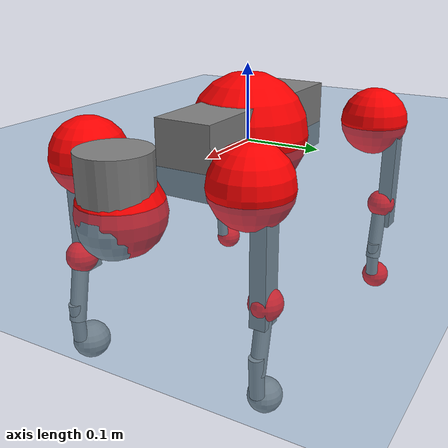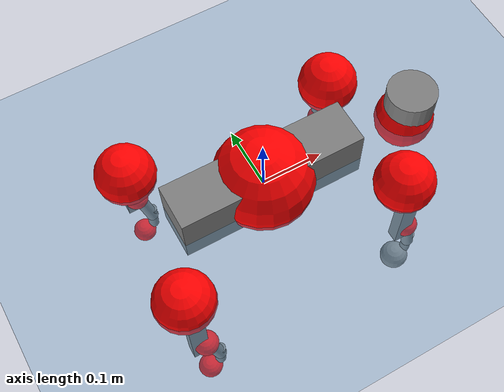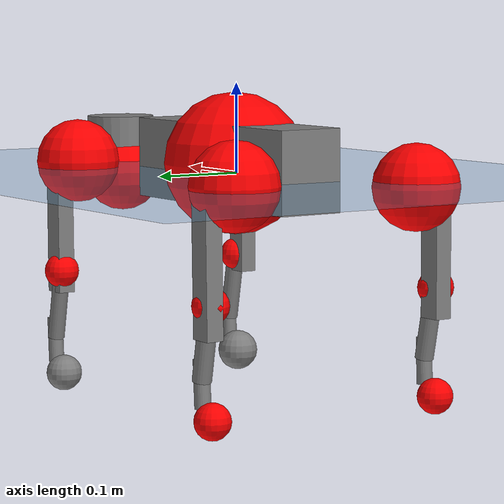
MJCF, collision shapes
<mujoco model="go2">
  <compiler angle="radian" assetdir="assets" balanceinertia="true" inertiafromgeom="false"/>

  <option timestep="0.005" density="1.2" viscosity="2e-05"/>

  <size nkey="1"/>

  <visual>
    <quality shadowsize="8192"/>
    <map shadowclip="0.5"/>
  </visual>

  <default>
    <default class="/">
      <geom contype="0" conaffinity="0" group="1" solref="-1000 -80"/>
      <site size="0.01 0.005 0.005" group="5"/>
      <general forcelimited="true" biastype="affine" gainprm="20" biasprm="0 -20 -0.5"/>
      <default class="go2">
        <joint armature="0.01" damping="0.01" frictionloss="0.2"/>
        <geom condim="1" margin="0.001"/>
        <default class="visual">
          <geom type="mesh" group="2"/>
        </default>
        <default class="collision">
          <geom group="3"/>
          <default class="foot">
            <geom size="0.022 0 0" condim="6" priority="1" friction="0.8 0.02 0.01" solimp="0.015 1 0.022"/>
          </default>
        </default>
        <default class="reward_collision_sphere">
          <geom group="5" rgba="1 0 0 1"/>
        </default>
      </default>
    </default>
  </default>

  <asset>
    <texture type="skybox" colorspace="auto" name="//unnamed_texture_0" builtin="gradient" rgb1="0.95 0.95 0.95" rgb2="0.95 0.95 0.95" width="100" height="600"/>
    <texture type="2d" colorspace="auto" name="texplane" builtin="checker" rgb1="0.345 0.575 0.748" rgb2="0.345 0.575 0.748" markrgb="1 1 1" width="512" height="512"/>
    <material name="MatPlane" class="/" texture="texplane" texuniform="true" texrepeat="2 2" specular="0.9"/>
    <material name="metal" class="/" rgba="0.9 0.95 0.95 1"/>
    <material name="black" class="/" rgba="0 0 0 1"/>
    <material name="white" class="/"/>
    <material name="gray" class="/" rgba="0.671705 0.692426 0.77427 1"/>
    <mesh name="base_0" class="/" file="base_0.obj"/>
    <mesh name="base_1" class="/" file="base_1.obj"/>
    <mesh name="base_2" class="/" file="base_2.obj"/>
    <mesh name="base_3" class="/" file="base_3.obj"/>
    <mesh name="base_4" class="/" file="base_4.obj"/>
    <mesh name="hip_0" class="/" file="hip_0.obj"/>
    <mesh name="hip_1" class="/" file="hip_1.obj"/>
    <mesh name="thigh_0" class="/" file="thigh_0.obj"/>
    <mesh name="thigh_1" class="/" file="thigh_1.obj"/>
    <mesh name="thigh_mirror_0" class="/" file="thigh_mirror_0.obj"/>
    <mesh name="thigh_mirror_1" class="/" file="thigh_mirror_1.obj"/>
    <mesh name="calf_0" class="/" file="calf_0.obj"/>
    <mesh name="calf_1" class="/" file="calf_1.obj"/>
    <mesh name="calf_mirror_0" class="/" file="calf_mirror_0.obj"/>
    <mesh name="calf_mirror_1" class="/" file="calf_mirror_1.obj"/>
    <mesh name="foot" class="/" file="foot.obj"/>
  </asset>

  <worldbody>
    <geom name="floor" class="/" size="100 100 0.125" type="plane" group="0" material="MatPlane"/>
    <light name="toplight_shadow" class="/" pos="0 0 5" dir="0.0990148 0.0990148 -0.990148" type="directional" ambient="0.04 0.04 0.04" diffuse="0.55 0.55 0.55" specular="0.12 0.12 0.12"/>
    <light name="toplight_fill" class="/" pos="0 0 5" dir="0.0990148 0.0990148 -0.990148" type="directional" castshadow="false" ambient="0.04 0.04 0.04" diffuse="0.3 0.3 0.3" specular="0.08 0.08 0.08"/>
    <body name="trunk" childclass="go2" pos="0.000867569 0.00123926 0.0107786" quat="0.999988 -0.00374377 -0.000196936 -0.00313104">
      <inertial pos="0.0211925 -0.00789773 -0.00308966" quat="-0.00263361 0.742551 0.0177978 0.669548" mass="3.25926" diaginertia="0.0589319 0.0528985 0.00121406"/>
      <joint name="//unnamed_joint_0" type="free" armature="0" damping="0" frictionloss="0"/>
      <geom name="//unnamed_geom_1" class="visual" material="black" mesh="base_0"/>
      <geom name="//unnamed_geom_2" class="visual" material="black" mesh="base_1"/>
      <geom name="//unnamed_geom_3" class="visual" material="black" mesh="base_2"/>
      <geom name="//unnamed_geom_4" class="visual" material="white" mesh="base_3"/>
      <geom name="//unnamed_geom_5" class="visual" material="gray" mesh="base_4"/>
      <geom name="trunk_1" class="collision" size="0.15 0.0372808 0.0454546" type="box"/>
      <geom name="trunk_2" class="collision" size="0.0398725 0.0358852" pos="0.26156 0 0.00563319" type="cylinder"/>
      <geom name="trunk_3" class="collision" size="0.0374801" pos="0.268902 0 -0.0337991"/>
      <geom name="//unnamed_geom_9" class="reward_collision_sphere" size="0.0797449"/>
      <geom name="//unnamed_geom_10" class="reward_collision_sphere" size="0.047847" pos="0.256972 0 -0.0253493"/>
      <site name="imu" pos="-0.0234986 -0.0246713 0.0607757" size="0.00797449"/>
      <camera name="track" pos="0 -1.82255 0" quat="0.707107 0.707107 0 0" mode="trackcom"/>
      <camera name="ego_camera" pos="0.28634 0 0.0253493" quat="-0.5 -0.5 0.5 0.5"/>
      <body name="FL_hip" pos="0.176605 0.0404568 -0.0033172" quat="1 -3.04344e-05 -0.000142115 -0.000312281">
        <inertial pos="0.00431428 0.00427356 0.0103657" quat="0.478686 0.522258 0.471316 0.525327" mass="0.364804" diaginertia="0.000558177 0.000403411 2.9045e-05"/>
        <joint name="FL_hip_joint" pos="0 0 0" axis="0.999051 0.0298758 -0.0316891" stiffness="0.0344431" range="-1.06524 0.95997" armature="0.00770551" damping="0.0416095" frictionloss="0.125272"/>
        <geom name="//unnamed_geom_11" class="visual" material="metal" mesh="hip_0"/>
        <geom name="//unnamed_geom_12" class="visual" material="gray" mesh="hip_1"/>
        <geom name="//unnamed_geom_13" class="collision" size="0.0366827 0.015949" pos="0 0.0729019 0" quat="0.707107 0.707107 0 0" type="cylinder"/>
        <geom name="//unnamed_geom_14" class="reward_collision_sphere" size="0.047847" pos="0 0.0637891 0"/>
        <body name="FL_thigh" pos="0.00773737 0.0838917 -0.00784786" quat="1 0.000399991 0.000300215 -0.000545497">
          <inertial pos="-0.00141535 -0.0189425 -0.0200422" quat="0.829613 0.0906289 -0.0260381 0.550319" mass="0.64301" diaginertia="0.00428314 0.00407397 6.06095e-05"/>
          <joint name="FL_thigh_joint" pos="0 0 0" axis="0.00184299 0.999994 -0.00297899" stiffness="0.009412" range="-1.47869 3.51046" armature="0.0103014" damping="0" frictionloss="0.158094"/>
          <geom name="//unnamed_geom_15" class="visual" material="metal" mesh="thigh_0"/>
          <geom name="//unnamed_geom_16" class="visual" material="gray" mesh="thigh_1"/>
          <geom name="//unnamed_geom_17" class="collision" size="0.0849283 0.00976875 0.0135566" pos="0 0 -0.0599935" quat="0.707107 0 0.707107 0" type="box"/>
          <body name="FL_calf" pos="-0.00360693 0.00110586 -0.120211" quat="1 -2.93592e-05 -3.33353e-05 -5.95645e-05">
            <inertial pos="0.0176934 0.00955076 -0.0806344" quat="0.70831 0.0092777 -0.006002 0.705815" mass="0.12189" diaginertia="0.00106161 0.00091315 2.89998e-06"/>
            <joint name="FL_calf_joint" pos="0 0 0" axis="0.0112702 0.999903 -0.00819514" stiffness="0.0207559" range="-2.48944 -0.93634" armature="0.00868818" damping="0.00964748" frictionloss="0.0704024"/>
            <geom name="//unnamed_geom_18" class="visual" material="gray" mesh="calf_0"/>
            <geom name="//unnamed_geom_19" class="visual" material="black" mesh="calf_1"/>
            <geom name="FL_calf0" class="collision" size="0.00956939 0.047847" pos="0.00734204 0 -0.0337991" quat="0.994493 0 -0.104807 0" type="cylinder"/>
            <geom name="//unnamed_geom_21" class="collision" size="0.00877194 0.0259171" pos="0.0183551 0 -0.0833712" quat="0.999688 0 0.0249974 0" type="cylinder"/>
            <geom name="//unnamed_geom_22" class="visual" pos="0 0 -0.119987" quat="1 0 0 0" material="black" mesh="foot"/>
            <geom name="FL_foot" class="foot" size="0.0206955" pos="-0.00183551 0 -0.119987"/>
            <geom name="//unnamed_geom_24" class="reward_collision_sphere" size="0.0199362"/>
            <geom name="//unnamed_geom_25" class="reward_collision_sphere" size="0.0199362" pos="-0.00183551 0 -0.119987"/>
            <site name="FL_foot" class="foot" pos="-0.00183551 0 -0.119987" size="0.00797449"/>
          </body>
        </body>
      </body>
      <body name="FR_hip" pos="0.182249 -0.045112 -0.002653" quat="0.999984 0.000946729 0.00133827 -0.0053535">
        <inertial pos="-0.00214871 -0.00197242 0.00204413" quat="0.524105 0.509426 0.512648 0.450545" mass="0.302486" diaginertia="0.00058848 0.000373711 2.80087e-05"/>
        <joint name="FR_hip_joint" pos="0 0 0" axis="0.999751 -0.00829148 -0.0207152" stiffness="0.0411368" range="-0.833994 1.13306" armature="0.00767437" damping="0.0351022" frictionloss="0.114165"/>
        <geom name="//unnamed_geom_26" class="visual" pos="0 3.03124e-09 1.30016e-07" quat="4.63268e-05 1 0 0" material="metal" mesh="hip_0"/>
        <geom name="//unnamed_geom_27" class="visual" pos="0 4.914e-09 -3.21579e-07" quat="4.63268e-05 1 0 0" material="gray" mesh="hip_1"/>
        <geom name="//unnamed_geom_28" class="collision" size="0.0366827 0.015949" pos="0 -0.0729019 0" quat="0.707107 0.707107 0 0" type="cylinder"/>
        <geom name="//unnamed_geom_29" class="reward_collision_sphere" size="0.047847" pos="0 -0.0637891 0"/>
        <body name="FR_thigh" pos="0.00243126 -0.0816366 -0.00263545" quat="0.999999 0.00153268 -0.000420615 -0.000463308">
          <inertial pos="0.000866536 0.0227636 -0.0168131" quat="0.556343 -0.0183236 0.086119 0.826275" mass="0.531339" diaginertia="0.00395738 0.00402687 4.78237e-05"/>
          <joint name="FR_thigh_joint" pos="0 0 0" axis="-0.00242544 -0.999996 -0.00144934" range="-3.49552 1.66579" armature="0.00944073" damping="0.0631364" frictionloss="0.219464"/>
          <geom name="//unnamed_geom_30" class="visual" material="metal" mesh="thigh_mirror_0"/>
          <geom name="//unnamed_geom_31" class="visual" material="gray" mesh="thigh_mirror_1"/>
          <geom name="//unnamed_geom_32" class="collision" size="0.0849283 0.00976875 0.0135566" pos="0 0 -0.0599935" quat="0.707107 0 0.707107 0" type="box"/>
          <body name="FR_calf" pos="0.0105893 0.00199228 -0.125138" quat="1 -0.000137158 -8.29497e-05 3.30797e-05">
            <inertial pos="0.00683429 0.0100021 -0.0872572" quat="0.662706 -0.0178615 -0.00200989 0.748664" mass="0.136281" diaginertia="0.00106433 0.000916298 3.60757e-06"/>
            <joint name="FR_calf_joint" pos="0 0 0" axis="-0.0151725 -0.999881 -0.00263911" stiffness="0.000769109" range="0.805989 2.71007" armature="0.00786351" damping="0.0373545" frictionloss="0.190217"/>
            <geom name="//unnamed_geom_33" class="visual" material="gray" mesh="calf_mirror_0"/>
            <geom name="//unnamed_geom_34" class="visual" material="black" mesh="calf_mirror_1"/>
            <geom name="FR_calf0" class="collision" size="0.0103668 0.047847" pos="0.00917755 0 -0.0337991" quat="0.995004 0 -0.0998334 0" type="cylinder"/>
            <geom name="//unnamed_geom_36" class="collision" size="0.00877194 0.0259171" pos="0.0183551 0 -0.0833712" quat="0.999688 0 0.0249974 0" type="cylinder"/>
            <geom name="//unnamed_geom_37" class="visual" pos="0 0 -0.119987" quat="1 0 0 0" material="black" mesh="foot"/>
            <geom name="FR_foot" class="foot" size="0.0239827" pos="-0.00183551 0 -0.119987"/>
            <geom name="//unnamed_geom_39" class="reward_collision_sphere" size="0.0199362"/>
            <geom name="//unnamed_geom_40" class="reward_collision_sphere" size="0.0199362" pos="-0.00183551 0 -0.119987"/>
            <site name="FR_foot" class="foot" pos="-0.00183551 0 -0.119987" size="0.00797449"/>
          </body>
        </body>
      </body>
      <body name="RL_hip" pos="-0.17592 0.0483617 -0.00704148" quat="1 7.61495e-05 0.000835239 -0.000281593">
        <inertial pos="0.00661117 0.0110142 0.0107507" quat="0.512057 0.500215 0.499342 0.488099" mass="0.359795" diaginertia="0.000639453 0.000383654 3.15024e-05"/>
        <joint name="RL_hip_joint" pos="0 0 0" axis="-0.999074 -0.0416753 -0.0106694" stiffness="0.00190862" range="-0.873026 0.856293" armature="0.00453885" damping="0" frictionloss="0.153608"/>
        <geom name="//unnamed_geom_41" class="visual" pos="-3.08771e-09 0 -6.05261e-07" quat="4.63268e-05 0 1 0" material="metal" mesh="hip_0"/>
        <geom name="//unnamed_geom_42" class="visual" pos="-5.00554e-09 0 -5.36781e-07" quat="4.63268e-05 0 1 0" material="gray" mesh="hip_1"/>
        <geom name="//unnamed_geom_43" class="collision" size="0.0366827 0.015949" pos="0 0.0729019 0" quat="0.707107 0.707107 0 0" type="cylinder"/>
        <geom name="//unnamed_geom_44" class="reward_collision_sphere" size="0.047847" pos="0 0.0637891 0"/>
        <body name="RL_thigh" pos="0.00307402 0.0954748 -0.0108972" quat="0.999994 -0.00305026 -0.000654655 0.00125836">
          <inertial pos="-0.0149418 -0.0135793 -0.0070434" quat="0.829252 0.0856029 -0.0200144 0.551917" mass="0.485901" diaginertia="0.00288853 0.00314414 3.90808e-05"/>
          <joint name="RL_thigh_joint" pos="0 0 0" axis="0.0573785 0.998235 -0.0152852" range="-0.411165 4.56419" armature="0.00813761" damping="0.0633233" frictionloss="0.13238"/>
          <geom name="//unnamed_geom_45" class="visual" material="metal" mesh="thigh_0"/>
          <geom name="//unnamed_geom_46" class="visual" material="gray" mesh="thigh_1"/>
          <geom name="//unnamed_geom_47" class="collision" size="0.0849283 0.00976875 0.0135566" pos="0 0 -0.0599935" quat="0.707107 0 0.707107 0" type="box"/>
          <body name="RL_calf" pos="0.00578633 -0.00685506 -0.111066" quat="0.999993 0.00314332 0.00171473 0.000987296">
            <inertial pos="0.0162006 -0.00677851 -0.068629" quat="0.741013 0.00932379 -0.0165977 0.671221" mass="0.135127" diaginertia="0.00105342 0.00104568 3.13315e-06"/>
            <joint name="RL_calf_joint" pos="0 0 0" axis="-0.00483873 0.9999 0.0133013" range="-2.71924 -0.600047" armature="0.00435185" damping="0.0596633" frictionloss="0.15489"/>
            <geom name="//unnamed_geom_48" class="visual" material="gray" mesh="calf_0"/>
            <geom name="//unnamed_geom_49" class="visual" material="black" mesh="calf_1"/>
            <geom name="RL_calf0" class="collision" size="0.0103668 0.047847" pos="0.00917755 0 -0.0337991" quat="0.995004 0 -0.0998334 0" type="cylinder"/>
            <geom name="//unnamed_geom_51" class="collision" size="0.00877194 0.0259171" pos="0.0183551 0 -0.0833712" quat="0.999688 0 0.0249974 0" type="cylinder"/>
            <geom name="//unnamed_geom_52" class="visual" pos="0 0 -0.119987" quat="1 0 0 0" material="black" mesh="foot"/>
            <geom name="RL_foot" class="foot" size="0.0161703" pos="-0.00183551 0 -0.119987"/>
            <geom name="//unnamed_geom_54" class="reward_collision_sphere" size="0.0199362"/>
            <geom name="//unnamed_geom_55" class="reward_collision_sphere" size="0.0199362" pos="-0.00183551 0 -0.119987"/>
            <site name="RL_foot" class="foot" pos="-0.00183551 0 -0.119987" size="0.00797449"/>
          </body>
        </body>
      </body>
      <body name="RR_hip" pos="-0.189264 -0.0456475 -0.0187982" quat="1 5.94562e-05 0.000659755 -0.000124316">
        <inertial pos="0.0127558 0.00344167 -0.00338939" quat="0.530058 0.471503 0.476571 0.519234" mass="0.342105" diaginertia="0.000435292 0.0003311 2.22801e-05"/>
        <joint name="RR_hip_joint" pos="0 0 0" axis="-0.998239 -0.0199401 -0.0558758" stiffness="0.00619322" range="-0.976012 1.04269" armature="0.00772322" damping="0.01867" frictionloss="0.0666447"/>
        <geom name="//unnamed_geom_56" class="visual" pos="3.08748e-09 3.03124e-09 -7.35277e-07" quat="2.14617e-09 4.63268e-05 4.63268e-05 -1" material="metal" mesh="hip_0"/>
        <geom name="//unnamed_geom_57" class="visual" pos="5.00609e-09 4.914e-09 -2.15201e-07" quat="2.14617e-09 4.63268e-05 4.63268e-05 -1" material="gray" mesh="hip_1"/>
        <geom name="//unnamed_geom_58" class="collision" size="0.0366827 0.015949" pos="0 -0.0729019 0" quat="0.707107 0.707107 0 0" type="cylinder"/>
        <geom name="//unnamed_geom_59" class="reward_collision_sphere" size="0.047847" pos="0 -0.0637891 0"/>
        <body name="RR_thigh" pos="-0.00120614 -0.089505 0.00135008" quat="1 -0.000161118 0.000651756 -1.62723e-05">
          <inertial pos="-0.00732995 0.0246348 -0.00872148" quat="0.567558 -0.0228154 0.0619333 0.820684" mass="0.680598" diaginertia="0.00353009 0.00367255 5.04743e-05"/>
          <joint name="RR_thigh_joint" pos="0 0 0" axis="-0.00690961 -0.999884 0.0135649" stiffness="0.00220674" range="-4.52144 0.669511" armature="0.00876229" damping="0.0143372" frictionloss="0.16751"/>
          <geom name="//unnamed_geom_60" class="visual" material="metal" mesh="thigh_mirror_0"/>
          <geom name="//unnamed_geom_61" class="visual" material="gray" mesh="thigh_mirror_1"/>
          <geom name="//unnamed_geom_62" class="collision" size="0.0849283 0.00976875 0.0135566" pos="0 0 -0.0599935" quat="0.707107 0 0.707107 0" type="box"/>
          <body name="RR_calf" pos="0.00997272 -0.00752472 -0.113267" quat="0.999982 0.0032147 -0.00480535 -0.00149754">
            <inertial pos="0.00388706 0.000900306 -0.0822444" quat="0.693214 -0.046798 -0.0152756 0.719049" mass="0.114505" diaginertia="0.000902678 0.00081379 3.16441e-06"/>
            <joint name="RR_calf_joint" pos="0 0 0" axis="-0.0407068 -0.998434 0.0383796" stiffness="0.050624" range="0.664768 2.73879" armature="0.00854171" damping="0.053142" frictionloss="0.16851"/>
            <geom name="//unnamed_geom_63" class="visual" material="gray" mesh="calf_mirror_0"/>
            <geom name="//unnamed_geom_64" class="visual" material="black" mesh="calf_mirror_1"/>
            <geom name="RR_calf0" class="collision" size="0.0103668 0.047847" pos="0.00917755 0 -0.0337991" quat="0.995004 0 -0.0998334 0" type="cylinder"/>
            <geom name="//unnamed_geom_66" class="collision" size="0.00877194 0.0259171" pos="0.0183551 0 -0.0833712" quat="0.999688 0 0.0249974 0" type="cylinder"/>
            <geom name="//unnamed_geom_67" class="visual" pos="0 0 -0.119987" quat="1 0 0 0" material="black" mesh="foot"/>
            <geom name="RR_foot" class="foot" size="0.0184756" pos="-0.00183551 0 -0.119987"/>
            <geom name="//unnamed_geom_69" class="reward_collision_sphere" size="0.0199362"/>
            <geom name="//unnamed_geom_70" class="reward_collision_sphere" size="0.0199362" pos="-0.00183551 0 -0.119987"/>
            <site name="RR_foot" class="foot" pos="-0.00183551 0 -0.119987" size="0.00797449"/>
          </body>
        </body>
      </body>
    </body>
  </worldbody>

  <contact>
    <pair class="/" geom1="floor" geom2="FL_foot" name="//unnamed_contact_0"/>
    <pair class="/" geom1="floor" geom2="FR_foot" name="//unnamed_contact_1"/>
    <pair class="/" geom1="floor" geom2="RL_foot" name="//unnamed_contact_2"/>
    <pair class="/" geom1="floor" geom2="RR_foot" name="//unnamed_contact_3"/>
  </contact>

  <actuator>
    <general name="FL_hip" class="/" joint="FL_hip_joint" forcerange="-17.4151 17.4151" gainprm="15.9086" biasprm="0 -15.9086 -0.40894"/>
    <general name="FL_thigh" class="/" joint="FL_thigh_joint" forcerange="-18.988 18.988" gainprm="15.9086" biasprm="0 -15.9086 -0.40894"/>
    <general name="FL_calf" class="/" joint="FL_calf_joint" forcerange="-29.8222 29.8222" gainprm="15.9086" biasprm="0 -15.9086 -0.40894"/>
    <general name="FR_hip" class="/" joint="FR_hip_joint" forcerange="-18.606 18.606" gainprm="15.9086" biasprm="0 -15.9086 -0.40894"/>
    <general name="FR_thigh" class="/" joint="FR_thigh_joint" forcerange="-15.7476 15.7476" gainprm="15.9086" biasprm="0 -15.9086 -0.40894"/>
    <general name="FR_calf" class="/" joint="FR_calf_joint" forcerange="-34.3043 34.3043" gainprm="15.9086" biasprm="0 -15.9086 -0.40894"/>
    <general name="RL_hip" class="/" joint="RL_hip_joint" forcerange="-18.1375 18.1375" gainprm="15.9086" biasprm="0 -15.9086 -0.40894"/>
    <general name="RL_thigh" class="/" joint="RL_thigh_joint" forcerange="-26.4465 26.4465" gainprm="15.9086" biasprm="0 -15.9086 -0.40894"/>
    <general name="RL_calf" class="/" joint="RL_calf_joint" forcerange="-23.6693 23.6693" gainprm="15.9086" biasprm="0 -15.9086 -0.40894"/>
    <general name="RR_hip" class="/" joint="RR_hip_joint" forcerange="-18.7934 18.7934" gainprm="15.9086" biasprm="0 -15.9086 -0.40894"/>
    <general name="RR_thigh" class="/" joint="RR_thigh_joint" forcerange="-20.4039 20.4039" gainprm="15.9086" biasprm="0 -15.9086 -0.40894"/>
    <general name="RR_calf" class="/" joint="RR_calf_joint" forcerange="-29.2836 29.2836" gainprm="15.9086" biasprm="0 -15.9086 -0.40894"/>
  </actuator>

  <sensor>
    <gyro site="imu" name="imu_angular_velocity"/>
    <velocimeter site="imu" name="imu_linear_velocity"/>
    <framelinvel objtype="site" objname="FL_foot" name="FL_foot_global_linear_velocity"/>
    <framelinvel objtype="site" objname="FR_foot" name="FR_foot_global_linear_velocity"/>
    <framelinvel objtype="site" objname="RL_foot" name="RL_foot_global_linear_velocity"/>
    <framelinvel objtype="site" objname="RR_foot" name="RR_foot_global_linear_velocity"/>
  </sensor>

  <keyframe>
    <key name="home" qpos="0 0 0.325 1 0 0 0 0.1 0.8 -1.5 -0.1 -0.8 1.5 -0.1 0.8 -1.5 0.1 -0.8 1.5"/>
  </keyframe>
</mujoco>
